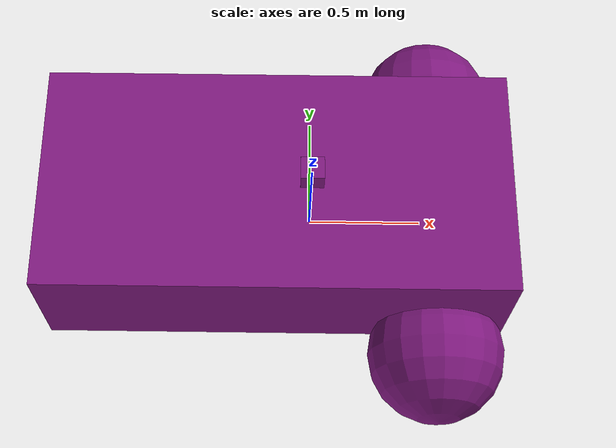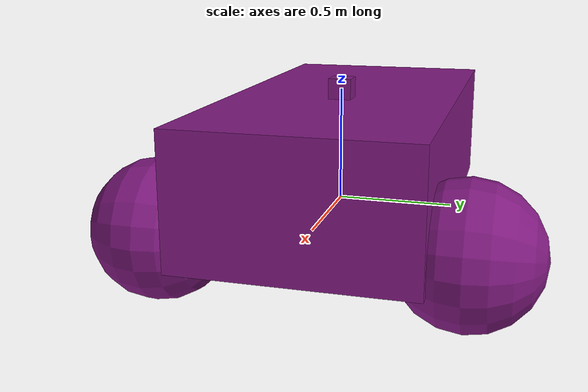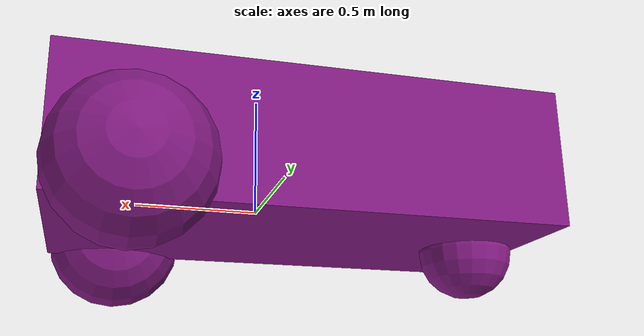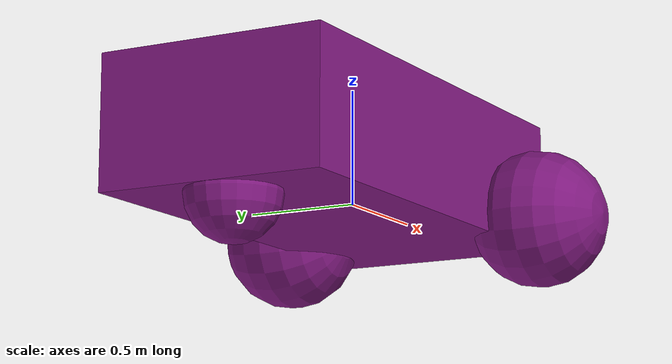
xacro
<robot name="nubot" xmlns:xacro="http://www.ros.org/wiki/xacro">
      <link name="base_link">
        <inertial>
          <origin xyz="-0.151427 -0 0.175" rpy="0 -0 0"/>
          <mass value="1.14395" />
          <inertia
            ixx="0.126164"
            ixy="0"
            ixz="0"
            iyy="0.416519"
            iyz="0"
            izz="0.481014"
          />
        </inertial>
        <visual>
          <origin xyz="-0.151427 -0 0.175" rpy="0 -0 0"/>
          <geometry>
            <box size="2.01142 1 0.568726" />
          </geometry>
          <material name="metal1">
             <color rgba="0.5 0.1 0.5 1.0" />
          </material>
        </visual>
        <collision>
          <origin xyz="-0.151427 -0 0.175" rpy="0 -0 0"/>
          <geometry>
            <box size="2.01142 1 0.568726" />
          </geometry>
        </collision>
      </link>

      <link name="base_footprint" />
      <joint name="base_joint" type="fixed">
             <parent link="base_link"/>
             <child link="base_footprint"/>
             <origin xyz="0.0 0.0 -0.15" rpy="0.0 0.0 0.0" />
     </joint>

      <link name="base_laser">
        <inertial>
          <mass value="0.1"/>
          <inertia
            ixx="0.000166667"
            iyy="0.000166667"
            izz="0.000166667"
            ixy="0.0"
            ixz="0.0"
            iyz="0.0"
          />
        </inertial>
        <collision>
          <geometry>
            <box size="0.1 0.1 0.1" />
          </geometry>
        </collision>
        <visual>
          <geometry>
            <box size="0.1 0.1 0.1" />
          </geometry>
          <material name="metal1" />
        </visual>
      </link>

      <link name="left_wheel">
        <inertial>
          <mass value="2.0" />
          <inertia
            ixx="0.145833"
            ixy="0"
            ixz="0"
            iyy="0.145833"
            iyz="0"
            izz="0.125"
          />
        </inertial>
        <visual>
          <geometry>
            <sphere radius="0.3" />
          </geometry>
          <material name="metal1" />
        </visual>
        <collision name='collision'>
          <geometry>
            <sphere radius="0.3" />
          </geometry>
        </collision>
      </link>

      <link name="right_wheel">
        <inertial>
          <mass value="2.0" />
          <inertia
            ixx="0.145833"
            ixy="0"
            ixz="0"
            iyy="0.145833"
            iyz="0"
            izz="0.125"
          />
        </inertial>
        <visual>
          <geometry>
            <sphere radius="0.3" />
          </geometry>
          <material name="metal1" />
        </visual>
        <collision name='collision'>
          <geometry>
            <sphere radius="0.3" />
          </geometry>
        </collision>
      </link>

      <link name='caster'>
        <inertial>
        <origin xyz="-0.957138 -0 -0.125" rpy="0 -0 0" />
          <mass value="1" />
          <inertia
            ixx="0.1"
            ixy="0"
            ixz="0"
            iyy="0.1"
            iyz="0"
            izz="0.1"
          />
        </inertial>
        <visual>
        <origin xyz="-0.957138 -0 -0.125" rpy="0 -0 0" />
          <geometry>
            <sphere radius="0.2" />
          </geometry>
          <material name="metal1" />
        </visual>
        <collision name='collision'>
        <origin xyz="-0.957138 -0 -0.125" rpy="0 -0 0" />
          <geometry>
            <sphere radius="0.2" />
          </geometry>
        </collision>
      </link>

      <joint name="lidar_sensor_joint" type="fixed">
        <origin xyz="0 0 0.5" rpy="0 0 0" />
        <parent link="base_link" />
        <child link="base_laser" />
      </joint>

      <joint name="left_wheel_joint" type="continuous">
        <origin xyz="0.554283 0.625029 -0.025" rpy="-1.5707 0 0" />
        <parent link="base_link" />
        <child link="left_wheel" />
        <axis xyz="0 0 1" />
      </joint>

      <joint name="right_wheel_joint" type="continuous">
        <origin xyz="0.554283 -0.625029 -0.025" rpy="-1.5707 0 0" />
        <parent link="base_link" />
        <child link="right_wheel" />
        <axis xyz="0 0 1" />
      </joint>

      <joint name="caster_wheel" type="fixed">
        <parent link="base_link" />
        <child link="caster" />
      </joint>

      <xacro:include filename="$(find nubot)/urdf/nubot.gazebo.xacro" />
</robot>
